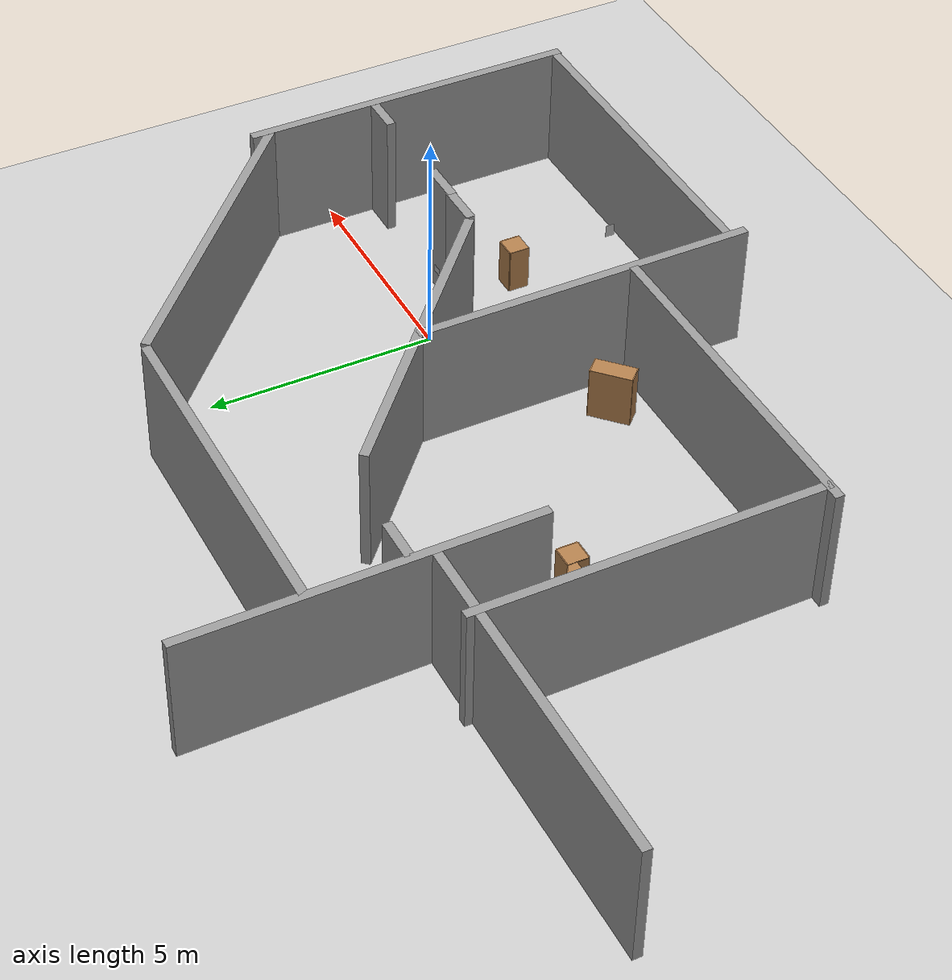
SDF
<sdf version="1.4">
 <world name="default">
  <model name="character">
   <static>1</static>
   <link name="cluedo_character::link">
    <collision name="collision">
     <geometry><plane><normal>0 0 1</normal><size>0.21 0.297</size></plane></geometry>
     <surface><friction><ode><mu>100</mu><mu2>50</mu2></ode></friction></surface>
    </collision>
    <visual name="visual">
     <pose>1.18 -5 0.4 1.57 5.55112e-17 -1.57</pose>
     <cast_shadows>0</cast_shadows>
     <geometry><plane><normal>0 0 1</normal><size>0.21 0.297</size></plane></geometry>
     <material>
      <script>
       <uri>model://cluedo_character/materials/scripts</uri>
       <uri>model://cluedo_character/materials/textures</uri>
       <name>Cluedo_character/Image</name>
      </script>
     </material>
    </visual>
    <velocity_decay><linear>0</linear><angular>0</angular></velocity_decay>
   </link>
  </model>
  <light name="sun" type="directional">
   <pose>0 0 1 0 -0 0</pose>
   <diffuse>0.8 0.8 0.8 1</diffuse>
   <specular>1 1 1 1</specular>
   <attenuation>
    <range>1000</range>
    <constant>0.9</constant>
    <linear>0.01</linear>
    <quadratic>0.001</quadratic>
   </attenuation>
   <direction>-0 0 -1</direction>
  </light>
  <light name="light_a" type="point">
   <cast_shadows>0</cast_shadows>
   <pose>0 0 1 0 -0 0</pose>
   <diffuse>0.2 0.2 0.2 1</diffuse>
   <specular>1 1 1 1</specular>
   <attenuation>
    <range>1000</range>
    <constant>0.9</constant>
    <linear>0.01</linear>
    <quadratic>0.001</quadratic>
   </attenuation>
   <direction>0 0 -1</direction>
  </light>
  <light name="light_b" type="point">
   <cast_shadows>0</cast_shadows>
   <pose>-7 6 1 0 -0 0</pose>
   <diffuse>0.2 0.2 0.2 0.2</diffuse>
   <specular>0.2 0.2 0.2 0.2</specular>
   <attenuation>
    <range>1000</range>
    <constant>0.9</constant>
    <linear>0.01</linear>
    <quadratic>0.001</quadratic>
   </attenuation>
   <direction>0 0 -1</direction>
  </light>
  <light name="light_c" type="point">
   <cast_shadows>0</cast_shadows>
   <pose>-2.3 6 1 0 -0 0</pose>
   <diffuse>0.2 0.2 0.2 1</diffuse>
   <specular>1 1 1 1</specular>
   <attenuation>
    <range>1000</range>
    <constant>0.9</constant>
    <linear>0.01</linear>
    <quadratic>0.001</quadratic>
   </attenuation>
   <direction>0 0 -1</direction>
  </light>
  <light name="light_d" type="point">
   <cast_shadows>0</cast_shadows>
   <pose>-7 2 1 0 -0 0</pose>
   <diffuse>0.2 0.2 0.2 1</diffuse>
   <specular>1 1 1 1</specular>
   <attenuation>
    <range>1000</range>
    <constant>0.9</constant>
    <linear>0.01</linear>
    <quadratic>0.001</quadratic>
   </attenuation>
   <direction>0 0 -1</direction>
  </light>
  <model name="ground_plane">
   <static>1</static>
   <link name="link">
    <collision name="collision">
     <geometry><plane><normal>0 0 1</normal><size>100 100</size></plane></geometry>
     <surface><friction><ode><mu>100</mu><mu2>50</mu2></ode></friction></surface>
    </collision>
    <visual name="visual">
     <cast_shadows>0</cast_shadows>
     <geometry><plane><normal>0 0 1</normal><size>100 100</size></plane></geometry>
     <material>
      <script><uri>file://media/materials/scripts/gazebo.material</uri><name>Gazebo/Grey</name></script>
     </material>
    </visual>
    <velocity_decay><linear>0</linear><angular>0</angular></velocity_decay>
   </link>
  </model>
  <physics type="ode">
   <max_step_size>0.001</max_step_size>
   <real_time_factor>1</real_time_factor>
   <real_time_update_rate>1000</real_time_update_rate>
   <gravity>0 0 -9.8</gravity>
  </physics>
  <scene><ambient>0.4 0.4 0.4 1</ambient><background>0.7 0.7 0.7 1</background><shadows>1</shadows></scene>
  <spherical_coordinates>
   <surface_model>EARTH_WGS84</surface_model>
   <latitude_deg>0</latitude_deg>
   <longitude_deg>0</longitude_deg>
   <elevation>0</elevation>
   <heading_deg>0</heading_deg>
  </spherical_coordinates>
  <model name="grey_wall_0">
   <static>1</static>
   <link name="link">
    <pose>0 0 1.4 0 -0 0</pose>
    <collision name="collision"><geometry><box><size>7.5 0.2 2.8</size></box></geometry></collision>
    <visual name="visual">
     <cast_shadows>0</cast_shadows>
     <geometry><box><size>7.5 0.2 2.8</size></box></geometry>
     <material>
      <script>
       <uri>model://grey_wall/materials/scripts</uri>
       <uri>model://grey_wall/materials/textures</uri>
       <name>vrc/grey_wall</name>
      </script>
     </material>
    </visual>
    <velocity_decay><linear>0</linear><angular>0</angular></velocity_decay>
   </link>
   <pose>-6.51703 -3.18722 0 0 -0 0</pose>
  </model>
  <model name="grey_wall_1">
   <static>1</static>
   <link name="link">
    <pose>0 0 1.4 0 -0 0</pose>
    <collision name="collision"><geometry><box><size>7.5 0.2 2.8</size></box></geometry></collision>
    <visual name="visual">
     <cast_shadows>0</cast_shadows>
     <geometry><box><size>7.5 0.2 2.8</size></box></geometry>
     <material>
      <script>
       <uri>model://grey_wall/materials/scripts</uri>
       <uri>model://grey_wall/materials/textures</uri>
       <name>vrc/grey_wall</name>
      </script>
     </material>
    </visual>
    <velocity_decay><linear>0</linear><angular>0</angular></velocity_decay>
   </link>
   <pose>-9.90155 0.512958 0 0 0 -1.57181</pose>
  </model>
  <model name="grey_wall_2">
   <static>1</static>
   <link name="link">
    <pose>0 0 1.4 0 -0 0</pose>
    <collision name="collision"><geometry><box><size>7.5 0.2 2.8</size></box></geometry></collision>
    <visual name="visual">
     <cast_shadows>0</cast_shadows>
     <geometry><box><size>7.5 0.2 2.8</size></box></geometry>
     <material>
      <script>
       <uri>model://grey_wall/materials/scripts</uri>
       <uri>model://grey_wall/materials/textures</uri>
       <name>vrc/grey_wall</name>
      </script>
     </material>
    </visual>
    <velocity_decay><linear>0</linear><angular>0</angular></velocity_decay>
   </link>
   <pose>-2.72239 -2.11082 0 0 -0 1.57557</pose>
  </model>
  <model name="grey_wall_3">
   <static>1</static>
   <link name="link">
    <pose>0 0 1.4 0 -0 0</pose>
    <collision name="collision"><geometry><box><size>7.5 0.2 2.8</size></box></geometry></collision>
    <visual name="visual">
     <cast_shadows>0</cast_shadows>
     <geometry><box><size>7.5 0.2 2.8</size></box></geometry>
     <material>
      <script>
       <uri>model://grey_wall/materials/scripts</uri>
       <uri>model://grey_wall/materials/textures</uri>
       <name>vrc/grey_wall</name>
      </script>
     </material>
    </visual>
    <velocity_decay><linear>0</linear><angular>0</angular></velocity_decay>
   </link>
   <pose>4.75718 -1.83424 0.00212 0 0 -1.57102</pose>
  </model>
  <model name="grey_wall_4">
   <static>1</static>
   <link name="link">
    <pose>0 0 1.4 0 -0 0</pose>
    <collision name="collision"><geometry><box><size>7.5 0.2 2.8</size></box></geometry></collision>
    <visual name="visual">
     <cast_shadows>0</cast_shadows>
     <geometry><box><size>7.5 0.2 2.8</size></box></geometry>
     <material>
      <script>
       <uri>model://grey_wall/materials/scripts</uri>
       <uri>model://grey_wall/materials/textures</uri>
       <name>vrc/grey_wall</name>
      </script>
     </material>
    </visual>
    <velocity_decay><linear>0</linear><angular>0</angular></velocity_decay>
   </link>
   <pose>1.06512 -5.45156 0 0 -0 0</pose>
  </model>
  <model name="cabinet">
   <static>1</static>
   <link name="cabinet_bottom_plate">
    <inertial>
     <pose>0 0 -1 0 -0 0</pose>
     <inertia><ixx>2.05</ixx><ixy>0</ixy><ixz>0</ixz><iyy>2.05</iyy><iyz>0</iyz><izz>2.05</izz></inertia>
     <mass>25</mass>
    </inertial>
    <collision name="cabinet_bottom_plate_geom">
     <pose>0 0 0.01 0 -0 0</pose>
     <geometry><box><size>0.45 0.45 0.02</size></box></geometry>
    </collision>
    <visual name="cabinet_bottom_plate_geom_visual">
     <pose>0 0 0.01 0 -0 0</pose>
     <geometry><box><size>0.45 0.45 0.02</size></box></geometry>
     <material>
      <script><uri>file://media/materials/scripts/gazebo.material</uri><name>Gazebo/Wood</name></script>
     </material>
    </visual>
    <collision name="cabinet_bottom_plate_geom_cabinet_back_plate">
     <pose>0.235 0 0.51 0 -0 0</pose>
     <geometry><box><size>0.02 0.45 1.02</size></box></geometry>
    </collision>
    <visual name="cabinet_bottom_plate_geom_cabinet_back_plate_visual">
     <pose>0.235 0 0.51 0 -0 0</pose>
     <geometry><box><size>0.02 0.45 1.02</size></box></geometry>
     <material>
      <script><uri>file://media/materials/scripts/gazebo.material</uri><name>Gazebo/Wood</name></script>
     </material>
    </visual>
    <collision name="cabinet_bottom_plate_geom_cabinet_left_plate">
     <pose>0 0.235 0.51 0 -0 0</pose>
     <geometry><box><size>0.45 0.02 1.02</size></box></geometry>
    </collision>
    <visual name="cabinet_bottom_plate_geom_cabinet_left_plate_visual">
     <pose>0 0.235 0.51 0 -0 0</pose>
     <geometry><box><size>0.45 0.02 1.02</size></box></geometry>
     <material>
      <script><uri>file://media/materials/scripts/gazebo.material</uri><name>Gazebo/Wood</name></script>
     </material>
    </visual>
    <collision name="cabinet_bottom_plate_geom_cabinet_middle_plate">
     <pose>0 0 0.51 0 -0 0</pose>
     <geometry><box><size>0.45 0.45 0.02</size></box></geometry>
    </collision>
    <visual name="cabinet_bottom_plate_geom_cabinet_middle_plate_visual">
     <pose>0 0 0.51 0 -0 0</pose>
     <geometry><box><size>0.45 0.45 0.02</size></box></geometry>
     <material>
      <script><uri>file://media/materials/scripts/gazebo.material</uri><name>Gazebo/Wood</name></script>
     </material>
    </visual>
    <collision name="cabinet_bottom_plate_geom_cabinet_right_plate">
     <pose>0 -0.235 0.51 0 -0 0</pose>
     <geometry><box><size>0.45 0.02 1.02</size></box></geometry>
    </collision>
    <visual name="cabinet_bottom_plate_geom_cabinet_right_plate_visual">
     <pose>0 -0.235 0.51 0 -0 0</pose>
     <geometry><box><size>0.45 0.02 1.02</size></box></geometry>
     <material>
      <script><uri>file://media/materials/scripts/gazebo.material</uri><name>Gazebo/Wood</name></script>
     </material>
    </visual>
    <collision name="cabinet_bottom_plate_geom_cabinet_top_plate">
     <pose>0 0 1.01 0 -0 0</pose>
     <geometry><box><size>0.45 0.45 0.02</size></box></geometry>
    </collision>
    <visual name="cabinet_bottom_plate_geom_cabinet_top_plate_visual">
     <pose>0 0 1.01 0 -0 0</pose>
     <geometry><box><size>0.45 0.45 0.02</size></box></geometry>
     <material>
      <script><uri>file://media/materials/scripts/gazebo.material</uri><name>Gazebo/Wood</name></script>
     </material>
    </visual>
    <velocity_decay><linear>0</linear><angular>0</angular></velocity_decay>
   </link>
   <pose>0.912804 -2.47692 0.028898 0 -0 1.56926</pose>
  </model>
  <model name="grey_wall_8">
   <static>1</static>
   <link name="link">
    <pose>0 0 1.4 0 -0 0</pose>
    <collision name="collision"><geometry><box><size>7.5 0.2 2.8</size></box></geometry></collision>
    <visual name="visual">
     <cast_shadows>0</cast_shadows>
     <geometry><box><size>7.5 0.2 2.8</size></box></geometry>
     <material>
      <script>
       <uri>model://grey_wall/materials/scripts</uri>
       <uri>model://grey_wall/materials/textures</uri>
       <name>vrc/grey_wall</name>
      </script>
     </material>
    </visual>
    <velocity_decay><linear>0</linear><angular>0</angular></velocity_decay>
   </link>
   <pose>-8.25909 5.41188 0 0 -0 1.5757</pose>
  </model>
  <model name="cabinet_0">
   <static>1</static>
   <link name="cabinet_bottom_plate">
    <inertial>
     <pose>0 0 -1 0 -0 0</pose>
     <inertia><ixx>2.05</ixx><ixy>0</ixy><ixz>0</ixz><iyy>2.05</iyy><iyz>0</iyz><izz>2.05</izz></inertia>
     <mass>25</mass>
    </inertial>
    <collision name="cabinet_bottom_plate_geom">
     <pose>0 0 0.01 0 -0 0</pose>
     <geometry><box><size>0.45 0.45 0.02</size></box></geometry>
    </collision>
    <visual name="cabinet_bottom_plate_geom_visual">
     <pose>0 0 0.01 0 -0 0</pose>
     <geometry><box><size>0.45 0.45 0.02</size></box></geometry>
     <material>
      <script><uri>file://media/materials/scripts/gazebo.material</uri><name>Gazebo/Wood</name></script>
     </material>
    </visual>
    <collision name="cabinet_bottom_plate_geom_cabinet_back_plate">
     <pose>0.235 0 0.51 0 -0 0</pose>
     <geometry><box><size>0.02 0.45 1.02</size></box></geometry>
    </collision>
    <visual name="cabinet_bottom_plate_geom_cabinet_back_plate_visual">
     <pose>0.235 0 0.51 0 -0 0</pose>
     <geometry><box><size>0.02 0.45 1.02</size></box></geometry>
     <material>
      <script><uri>file://media/materials/scripts/gazebo.material</uri><name>Gazebo/Wood</name></script>
     </material>
    </visual>
    <collision name="cabinet_bottom_plate_geom_cabinet_left_plate">
     <pose>0 0.235 0.51 0 -0 0</pose>
     <geometry><box><size>0.45 0.02 1.02</size></box></geometry>
    </collision>
    <visual name="cabinet_bottom_plate_geom_cabinet_left_plate_visual">
     <pose>0 0.235 0.51 0 -0 0</pose>
     <geometry><box><size>0.45 0.02 1.02</size></box></geometry>
     <material>
      <script><uri>file://media/materials/scripts/gazebo.material</uri><name>Gazebo/Wood</name></script>
     </material>
    </visual>
    <collision name="cabinet_bottom_plate_geom_cabinet_middle_plate">
     <pose>0 0 0.51 0 -0 0</pose>
     <geometry><box><size>0.45 0.45 0.02</size></box></geometry>
    </collision>
    <visual name="cabinet_bottom_plate_geom_cabinet_middle_plate_visual">
     <pose>0 0 0.51 0 -0 0</pose>
     <geometry><box><size>0.45 0.45 0.02</size></box></geometry>
     <material>
      <script><uri>file://media/materials/scripts/gazebo.material</uri><name>Gazebo/Wood</name></script>
     </material>
    </visual>
    <collision name="cabinet_bottom_plate_geom_cabinet_right_plate">
     <pose>0 -0.235 0.51 0 -0 0</pose>
     <geometry><box><size>0.45 0.02 1.02</size></box></geometry>
    </collision>
    <visual name="cabinet_bottom_plate_geom_cabinet_right_plate_visual">
     <pose>0 -0.235 0.51 0 -0 0</pose>
     <geometry><box><size>0.45 0.02 1.02</size></box></geometry>
     <material>
      <script><uri>file://media/materials/scripts/gazebo.material</uri><name>Gazebo/Wood</name></script>
     </material>
    </visual>
    <collision name="cabinet_bottom_plate_geom_cabinet_top_plate">
     <pose>0 0 1.01 0 -0 0</pose>
     <geometry><box><size>0.45 0.45 0.02</size></box></geometry>
    </collision>
    <visual name="cabinet_bottom_plate_geom_cabinet_top_plate_visual">
     <pose>0 0 1.01 0 -0 0</pose>
     <geometry><box><size>0.45 0.45 0.02</size></box></geometry>
     <material>
      <script><uri>file://media/materials/scripts/gazebo.material</uri><name>Gazebo/Wood</name></script>
     </material>
    </visual>
    <velocity_decay><linear>0</linear><angular>0</angular></velocity_decay>
   </link>
   <pose>-7.86683 0.925523 0 0 -0 0</pose>
  </model>
  <model name="bookshelf_0">
   <static>1</static>
   <link name="link">
    <inertial><mass>1</mass></inertial>
    <collision name="back">
     <pose>0 0.005 0.6 0 -0 0</pose>
     <geometry><box><size>0.9 0.01 1.2</size></box></geometry>
    </collision>
    <visual name="visual1">
     <pose>0 0.005 0.6 0 -0 0</pose>
     <geometry><box><size>0.9 0.01 1.2</size></box></geometry>
     <material>
      <script><uri>file://media/materials/scripts/gazebo.material</uri><name>Gazebo/Wood</name></script>
     </material>
    </visual>
    <collision name="left_side">
     <pose>0.45 -0.195 0.6 0 -0 0</pose>
     <geometry><box><size>0.02 0.4 1.2</size></box></geometry>
    </collision>
    <visual name="visual2">
     <pose>0.45 -0.195 0.6 0 -0 0</pose>
     <geometry><box><size>0.02 0.4 1.2</size></box></geometry>
     <material>
      <script><uri>file://media/materials/scripts/gazebo.material</uri><name>Gazebo/Wood</name></script>
     </material>
    </visual>
    <collision name="right_side">
     <pose>-0.45 -0.195 0.6 0 -0 0</pose>
     <geometry><box><size>0.02 0.4 1.2</size></box></geometry>
    </collision>
    <visual name="visual3">
     <pose>-0.45 -0.195 0.6 0 -0 0</pose>
     <geometry><box><size>0.02 0.4 1.2</size></box></geometry>
     <material>
      <script><uri>file://media/materials/scripts/gazebo.material</uri><name>Gazebo/Wood</name></script>
     </material>
    </visual>
    <collision name="bottom">
     <pose>0 -0.195 0.03 0 -0 0</pose>
     <geometry><box><size>0.88 0.4 0.06</size></box></geometry>
    </collision>
    <visual name="visual4">
     <pose>0 -0.195 0.03 0 -0 0</pose>
     <geometry><box><size>0.88 0.4 0.06</size></box></geometry>
     <material>
      <script><uri>file://media/materials/scripts/gazebo.material</uri><name>Gazebo/Wood</name></script>
     </material>
    </visual>
    <collision name="top">
     <pose>0 -0.195 1.19 0 -0 0</pose>
     <geometry><box><size>0.88 0.4 0.02</size></box></geometry>
    </collision>
    <visual name="visual5">
     <pose>0 -0.195 1.19 0 -0 0</pose>
     <geometry><box><size>0.88 0.4 0.02</size></box></geometry>
     <material>
      <script><uri>file://media/materials/scripts/gazebo.material</uri><name>Gazebo/Wood</name></script>
     </material>
    </visual>
    <collision name="low_shelf">
     <pose>0 -0.195 0.43 0 -0 0</pose>
     <geometry><box><size>0.88 0.4 0.02</size></box></geometry>
    </collision>
    <visual name="visual6">
     <pose>0 -0.195 0.43 0 -0 0</pose>
     <geometry><box><size>0.88 0.4 0.02</size></box></geometry>
     <material>
      <script><uri>file://media/materials/scripts/gazebo.material</uri><name>Gazebo/Wood</name></script>
     </material>
    </visual>
    <collision name="high_shelf">
     <pose>0 -0.195 0.8 0 -0 0</pose>
     <geometry><box><size>0.88 0.4 0.02</size></box></geometry>
    </collision>
    <visual name="visual7">
     <pose>0 -0.195 0.8 0 -0 0</pose>
     <geometry><box><size>0.88 0.4 0.02</size></box></geometry>
     <material>
      <script><uri>file://media/materials/scripts/gazebo.material</uri><name>Gazebo/Wood</name></script>
     </material>
    </visual>
    <velocity_decay><linear>0</linear><angular>0</angular></velocity_decay>
   </link>
   <pose>-3.90366 -2.11997 0 0 -0 0.763607</pose>
  </model>
  <model name="grey_wall_small">
   <static>1</static>
   <link name="link">
    <pose>0 0 1.4 0 -0 0</pose>
    <collision name="collision"><geometry><box><size>0.9375 0.2 2.8</size></box></geometry></collision>
    <visual name="visual">
     <cast_shadows>0</cast_shadows>
     <geometry><box><size>0.9375 0.2 2.8</size></box></geometry>
     <material>
      <script>
       <uri>model://grey_wall_small/materials/scripts</uri>
       <uri>model://grey_wall_small/materials/textures</uri>
       <name>vrc/grey_wall_small</name>
      </script>
     </material>
    </visual>
    <velocity_decay><linear>0</linear><angular>0</angular></velocity_decay>
   </link>
   <pose>0.611288 -0.996478 0 0 -0 0</pose>
  </model>
  <model name="grey_wall_small_1">
   <static>1</static>
   <link name="link">
    <pose>0 0 1.4 0 -0 0</pose>
    <collision name="collision"><geometry><box><size>0.9375 0.2 2.8</size></box></geometry></collision>
    <visual name="visual">
     <cast_shadows>0</cast_shadows>
     <geometry><box><size>0.9375 0.2 2.8</size></box></geometry>
     <material>
      <script>
       <uri>model://grey_wall_small/materials/scripts</uri>
       <uri>model://grey_wall_small/materials/textures</uri>
       <name>vrc/grey_wall_small</name>
      </script>
     </material>
    </visual>
    <velocity_decay><linear>0</linear><angular>0</angular></velocity_decay>
   </link>
   <pose>1.49022 -1.01558 0 0 -0 0</pose>
  </model>
  <model name="grey_wall_small_2">
   <static>1</static>
   <link name="link">
    <pose>0 0 1.4 0 -0 0</pose>
    <collision name="collision"><geometry><box><size>0.9375 0.2 2.8</size></box></geometry></collision>
    <visual name="visual">
     <cast_shadows>0</cast_shadows>
     <geometry><box><size>0.9375 0.2 2.8</size></box></geometry>
     <material>
      <script>
       <uri>model://grey_wall_small/materials/scripts</uri>
       <uri>model://grey_wall_small/materials/textures</uri>
       <name>vrc/grey_wall_small</name>
      </script>
     </material>
    </visual>
    <velocity_decay><linear>0</linear><angular>0</angular></velocity_decay>
   </link>
   <pose>4.31937 -0.968706 0 0 -0 0</pose>
  </model>
  <model name="grey_wall_small_4">
   <static>1</static>
   <link name="link">
    <pose>0 0 1.4 0 -0 0</pose>
    <collision name="collision"><geometry><box><size>0.9375 0.2 2.8</size></box></geometry></collision>
    <visual name="visual">
     <cast_shadows>0</cast_shadows>
     <geometry><box><size>0.9375 0.2 2.8</size></box></geometry>
     <material>
      <script>
       <uri>model://grey_wall_small/materials/scripts</uri>
       <uri>model://grey_wall_small/materials/textures</uri>
       <name>vrc/grey_wall_small</name>
      </script>
     </material>
    </visual>
    <velocity_decay><linear>0</linear><angular>0</angular></velocity_decay>
   </link>
   <pose>-7.72854 4.46929 0 0 -0 0</pose>
  </model>
  <model name="red_image">
   <static>1</static>
   <link name="link">
    <collision name="collision">
     <geometry><plane><normal>0 0 1</normal><size>0.21 0.16</size></plane></geometry>
     <surface><friction><ode><mu>100</mu><mu2>50</mu2></ode></friction></surface>
    </collision>
    <visual name="visual">
     <pose>-5.18 4 0.4 1.57 -5.55112e-17 2.6</pose>
     <cast_shadows>0</cast_shadows>
     <geometry><plane><normal>0 0 1</normal><size>0.21 0.16</size></plane></geometry>
     <material>
      <script>
       <uri>model://red_image/materials/scripts</uri>
       <uri>model://red_image/materials/textures</uri>
       <name>red_image/Image</name>
      </script>
     </material>
    </visual>
    <velocity_decay><linear>0</linear><angular>0</angular></velocity_decay>
   </link>
  </model>
  <model name="green_image">
   <static>1</static>
   <link name="link">
    <collision name="collision">
     <geometry><plane><normal>0 0 1</normal><size>0.21 0.16</size></plane></geometry>
     <surface><friction><ode><mu>100</mu><mu2>50</mu2></ode></friction></surface>
    </collision>
    <visual name="visual">
     <pose>1.49022 -0.9 0.5 1.57 4.33681e-19 3.14</pose>
     <cast_shadows>0</cast_shadows>
     <geometry><plane><normal>0 0 1</normal><size>0.21 0.16</size></plane></geometry>
     <material>
      <script>
       <uri>model://green_image/materials/scripts</uri>
       <uri>model://green_image/materials/textures</uri>
       <name>green_image/Image</name>
      </script>
     </material>
    </visual>
    <velocity_decay><linear>0</linear><angular>0</angular></velocity_decay>
   </link>
  </model>
  <model name="cabinet_1">
   <static>1</static>
   <link name="cabinet_bottom_plate">
    <inertial>
     <pose>0 0 -1 0 -0 0</pose>
     <inertia><ixx>2.05</ixx><ixy>0</ixy><ixz>0</ixz><iyy>2.05</iyy><iyz>0</iyz><izz>2.05</izz></inertia>
     <mass>25</mass>
    </inertial>
    <collision name="cabinet_bottom_plate_geom">
     <pose>0 0 0.01 0 -0 0</pose>
     <geometry><box><size>0.45 0.45 0.02</size></box></geometry>
    </collision>
    <visual name="cabinet_bottom_plate_geom_visual">
     <pose>0 0 0.01 0 -0 0</pose>
     <geometry><box><size>0.45 0.45 0.02</size></box></geometry>
     <material>
      <script><uri>file://media/materials/scripts/gazebo.material</uri><name>Gazebo/Wood</name></script>
     </material>
    </visual>
    <collision name="cabinet_bottom_plate_geom_cabinet_back_plate">
     <pose>0.235 0 0.51 0 -0 0</pose>
     <geometry><box><size>0.02 0.45 1.02</size></box></geometry>
    </collision>
    <visual name="cabinet_bottom_plate_geom_cabinet_back_plate_visual">
     <pose>0.235 0 0.51 0 -0 0</pose>
     <geometry><box><size>0.02 0.45 1.02</size></box></geometry>
     <material>
      <script><uri>file://media/materials/scripts/gazebo.material</uri><name>Gazebo/Wood</name></script>
     </material>
    </visual>
    <collision name="cabinet_bottom_plate_geom_cabinet_left_plate">
     <pose>0 0.235 0.51 0 -0 0</pose>
     <geometry><box><size>0.45 0.02 1.02</size></box></geometry>
    </collision>
    <visual name="cabinet_bottom_plate_geom_cabinet_left_plate_visual">
     <pose>0 0.235 0.51 0 -0 0</pose>
     <geometry><box><size>0.45 0.02 1.02</size></box></geometry>
     <material>
      <script><uri>file://media/materials/scripts/gazebo.material</uri><name>Gazebo/Wood</name></script>
     </material>
    </visual>
    <collision name="cabinet_bottom_plate_geom_cabinet_middle_plate">
     <pose>0 0 0.51 0 -0 0</pose>
     <geometry><box><size>0.45 0.45 0.02</size></box></geometry>
    </collision>
    <visual name="cabinet_bottom_plate_geom_cabinet_middle_plate_visual">
     <pose>0 0 0.51 0 -0 0</pose>
     <geometry><box><size>0.45 0.45 0.02</size></box></geometry>
     <material>
      <script><uri>file://media/materials/scripts/gazebo.material</uri><name>Gazebo/Wood</name></script>
     </material>
    </visual>
    <collision name="cabinet_bottom_plate_geom_cabinet_right_plate">
     <pose>0 -0.235 0.51 0 -0 0</pose>
     <geometry><box><size>0.45 0.02 1.02</size></box></geometry>
    </collision>
    <visual name="cabinet_bottom_plate_geom_cabinet_right_plate_visual">
     <pose>0 -0.235 0.51 0 -0 0</pose>
     <geometry><box><size>0.45 0.02 1.02</size></box></geometry>
     <material>
      <script><uri>file://media/materials/scripts/gazebo.material</uri><name>Gazebo/Wood</name></script>
     </material>
    </visual>
    <collision name="cabinet_bottom_plate_geom_cabinet_top_plate">
     <pose>0 0 1.01 0 -0 0</pose>
     <geometry><box><size>0.45 0.45 0.02</size></box></geometry>
    </collision>
    <visual name="cabinet_bottom_plate_geom_cabinet_top_plate_visual">
     <pose>0 0 1.01 0 -0 0</pose>
     <geometry><box><size>0.45 0.45 0.02</size></box></geometry>
     <material>
      <script><uri>file://media/materials/scripts/gazebo.material</uri><name>Gazebo/Wood</name></script>
     </material>
    </visual>
    <velocity_decay><linear>0</linear><angular>0</angular></velocity_decay>
   </link>
   <pose>-7.8455 4.90192 0 0 -0 0.78721</pose>
  </model>
  <model name="grey_wall_6">
   <static>1</static>
   <link name="link">
    <pose>0 0 1.4 0 -0 0</pose>
    <collision name="collision"><geometry><box><size>7.5 0.2 2.8</size></box></geometry></collision>
    <visual name="visual">
     <cast_shadows>0</cast_shadows>
     <geometry><box><size>7.5 0.2 2.8</size></box></geometry>
     <material>
      <script>
       <uri>model://grey_wall/materials/scripts</uri>
       <uri>model://grey_wall/materials/textures</uri>
       <name>vrc/grey_wall</name>
      </script>
     </material>
    </visual>
    <velocity_decay><linear>0</linear><angular>0</angular></velocity_decay>
   </link>
   <pose>-2.69114 1.56831 0 0 0 -0.734151</pose>
  </model>
  <model name="grey_wall_small_5">
   <static>1</static>
   <link name="link">
    <pose>0 0 1.4 0 -0 0</pose>
    <collision name="collision"><geometry><box><size>7.5 0.2 2.8</size></box></geometry></collision>
    <visual name="visual">
     <cast_shadows>0</cast_shadows>
     <geometry><box><size>7.5 0.2 2.8</size></box></geometry>
     <material>
      <script>
       <uri>model://grey_wall_small/materials/scripts</uri>
       <uri>model://grey_wall_small/materials/textures</uri>
       <name>vrc/grey_wall_small</name>
      </script>
     </material>
    </visual>
    <velocity_decay><linear>0</linear><angular>0</angular></velocity_decay>
   </link>
   <pose>-12 4 0 0 -0 0</pose>
  </model>
  <model name="grey_wall_7">
   <static>1</static>
   <link name="link">
    <pose>0 0 1.4 0 -0 0</pose>
    <collision name="collision"><geometry><box><size>7.5 0.2 2.8</size></box></geometry></collision>
    <visual name="visual">
     <cast_shadows>0</cast_shadows>
     <geometry><box><size>7.5 0.2 2.8</size></box></geometry>
     <material>
      <script>
       <uri>model://grey_wall/materials/scripts</uri>
       <uri>model://grey_wall/materials/textures</uri>
       <name>vrc/grey_wall</name>
      </script>
     </material>
    </visual>
    <velocity_decay><linear>0</linear><angular>0</angular></velocity_decay>
   </link>
   <pose>2.03435 3.97068 0 0 0 -0.745274</pose>
  </model>
  <model name="grey_wall_small_0">
   <static>1</static>
   <link name="link">
    <pose>0 0 1.4 0 -0 0</pose>
    <collision name="collision"><geometry><box><size>7.5 0.2 2.8</size></box></geometry></collision>
    <visual name="visual">
     <cast_shadows>0</cast_shadows>
     <geometry><box><size>7.5 0.2 2.8</size></box></geometry>
     <material>
      <script>
       <uri>model://grey_wall_small/materials/scripts</uri>
       <uri>model://grey_wall_small/materials/textures</uri>
       <name>vrc/grey_wall_small</name>
      </script>
     </material>
    </visual>
    <velocity_decay><linear>0</linear><angular>0</angular></velocity_decay>
   </link>
   <pose>-4.53732 6.53425 0 0 -0 0</pose>
  </model>
 </world>
</sdf>
